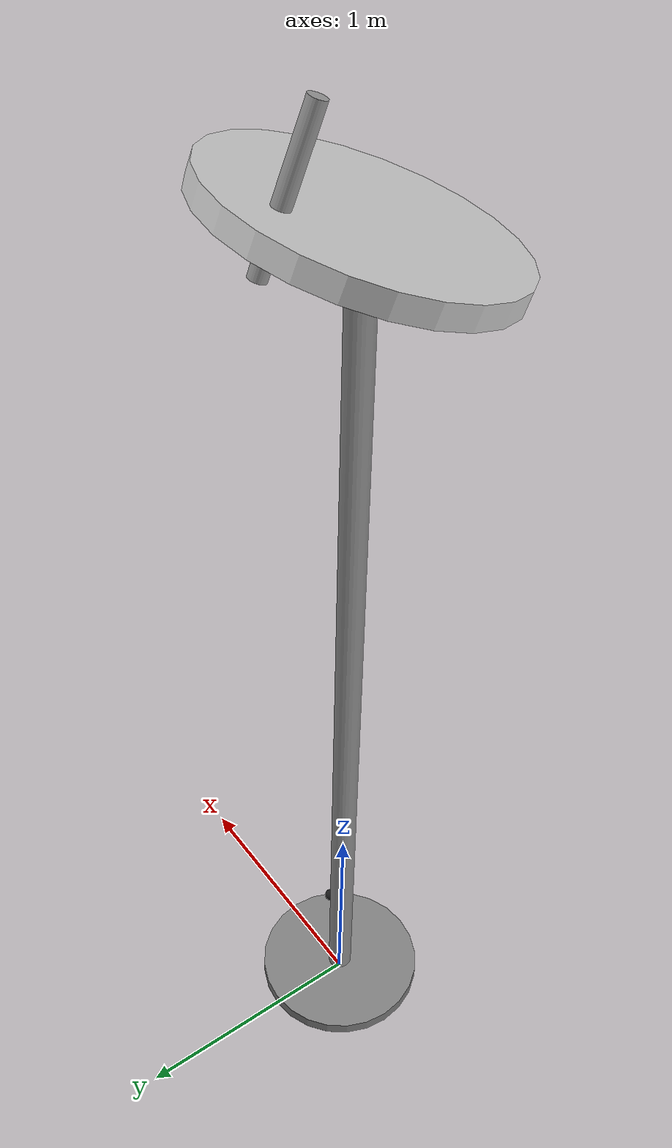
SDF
<?xml version="1.0"?>
<sdf version="1.9">
  <model name="comm_antenna">
    <static>true</static>

    <link name="body">
      <!-- Mast -->
      <visual name="mast_visual">
        <pose>0 0 2.0 0 0 0</pose>
        <geometry>
          <cylinder>
            <radius>0.05</radius>
            <length>4.0</length>
          </cylinder>
        </geometry>
        <material>
          <ambient>0.5 0.5 0.5 1</ambient>
          <diffuse>0.6 0.6 0.6 1</diffuse>
          <specular>0.3 0.3 0.3 1</specular>
        </material>
      </visual>

      <!-- Dish (simplified as wide short cylinder tilted) -->
      <visual name="dish_visual">
        <pose>0 0 4.0 0.4 0 0</pose>
        <geometry>
          <cylinder>
            <radius>0.5</radius>
            <length>0.08</length>
          </cylinder>
        </geometry>
        <material>
          <ambient>0.7 0.7 0.7 1</ambient>
          <diffuse>0.8 0.8 0.8 1</diffuse>
          <specular>0.4 0.4 0.4 1</specular>
        </material>
      </visual>

      <!-- Feed horn (small cylinder in front of dish) -->
      <visual name="feed_visual">
        <pose>0 0.25 4.2 0.4 0 0</pose>
        <geometry>
          <cylinder>
            <radius>0.03</radius>
            <length>0.5</length>
          </cylinder>
        </geometry>
        <material>
          <ambient>0.5 0.5 0.5 1</ambient>
          <diffuse>0.6 0.6 0.6 1</diffuse>
        </material>
      </visual>

      <!-- Base plate -->
      <visual name="base_visual">
        <pose>0 0 0.03 0 0 0</pose>
        <geometry>
          <cylinder>
            <radius>0.35</radius>
            <length>0.06</length>
          </cylinder>
        </geometry>
        <material>
          <ambient>0.4 0.4 0.4 1</ambient>
          <diffuse>0.5 0.5 0.5 1</diffuse>
        </material>
      </visual>

      <collision name="collision_mast">
        <pose>0 0 2.0 0 0 0</pose>
        <geometry>
          <cylinder>
            <radius>0.08</radius>
            <length>4.0</length>
          </cylinder>
        </geometry>
      </collision>
      <collision name="collision_dish">
        <pose>0 0 4.0 0.4 0 0</pose>
        <geometry>
          <cylinder>
            <radius>0.5</radius>
            <length>0.1</length>
          </cylinder>
        </geometry>
      </collision>

      <!-- Link status LED -->
      <visual name="link_led_visual">
        <pose>0.08 0 0.5 0 0 0</pose>
        <geometry>
          <sphere><radius>0.025</radius></sphere>
        </geometry>
        <material>
          <ambient>0.1 0.1 0.1 1</ambient>
          <diffuse>0.1 0.1 0.1 1</diffuse>
          <emissive>0 0 0 1</emissive>
        </material>
      </visual>
      <light name="link_led_light" type="point">
        <pose>0.1 0 0.5 0 0 0</pose>
        <diffuse>0 0 0 1</diffuse>
        <specular>0 0 0 1</specular>
        <attenuation>
          <range>2</range>
          <constant>1.0</constant>
          <linear>0.5</linear>
          <quadratic>0.3</quadratic>
        </attenuation>
      </light>
    </link>

    <plugin name="link_led" filename="libLedPlugin.so">
      <led_group_name>antenna_link</led_group_name>

      <led name="link">
        <visual_name>body/link_led_visual</visual_name>
        <light_name>body/link_led_light</light_name>
        <default_state>
          <color>0.1 0.1 0.1 1</color>
          <intensity>0.0</intensity>
        </default_state>
      </led>

      <mode name="transmitting">
        <step always_on="false">
          <color>0 0.5 1 1</color>
          <intensity>1.5</intensity>
          <on_time>0.3</on_time>
        </step>
        <step always_on="false">
          <color>0 0.1 0.3 1</color>
          <intensity>0.0</intensity>
          <on_time>0.3</on_time>
        </step>
      </mode>

      <mode name="connected">
        <step always_on="true">
          <color>0 1 0 1</color>
          <intensity>1.0</intensity>
        </step>
      </mode>
    </plugin>
  </model>
</sdf>
